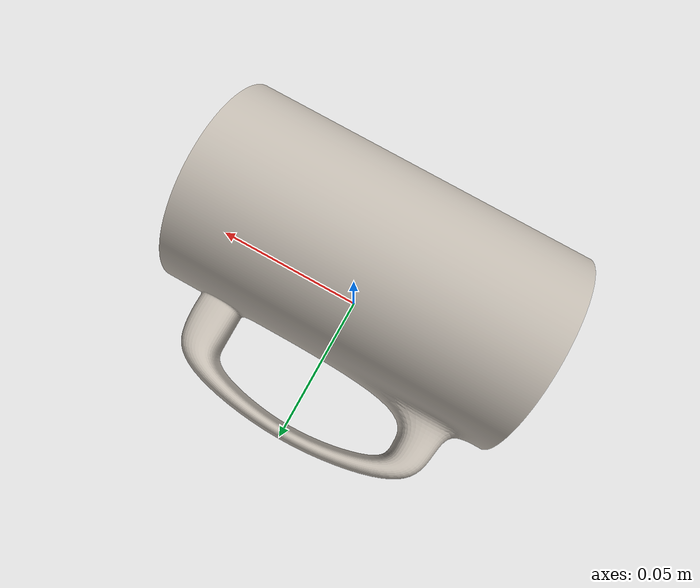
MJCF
<mujoco model="mug_70_optimized">
  <asset>
    <mesh file="visual/model_normalized_0.obj" name="mug_vis_mesh" scale="0.10 0.10 0.15" refquat="0.7071 0 0 0.7071" />
    <texture type="2d" name="mug_tex" file="visual/image0.png" />
    <material name="m_mug" texture="mug_tex" specular="0.5" shininess="0.36" />
  </asset>

  <worldbody>
    <body name="body_obj_mug_5" euler="0 90 90">
      <freejoint />

      <geom type="mesh" mesh="mug_vis_mesh" material="m_mug" conaffinity="0" contype="0" group="2" />

      <geom name="col_body" type="cylinder" size="0.04 0.075" pos="0 0 0"
            density="100" friction="0.95 0.3 0.1" group="3" rgba="0 0 0 0" />

      <geom name="col_handle" type="box" size="0.01 0.02 0.04" pos="0.05 0 0"
            density="10" friction="0.95 0.3 0.1" group="3" rgba="0 0 0 0" />

      <site name="bottom_site" pos="0 0 -0.075" size="0.005" rgba="0 0 0 0" />
      <site name="top_site" pos="0 0 0.075" size="0.005" rgba="0 0 0 0" />
      <site name="handle_site" pos="0.05 0 0" size="0.005" rgba="0 0 0 0" />
    </body>
  </worldbody>
</mujoco>
